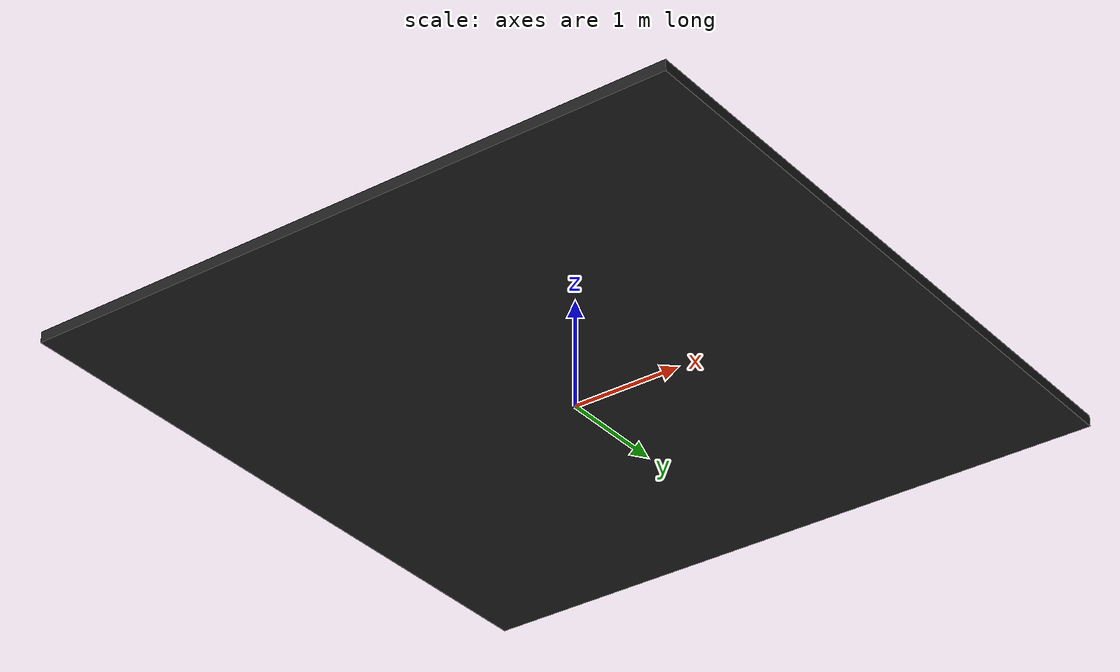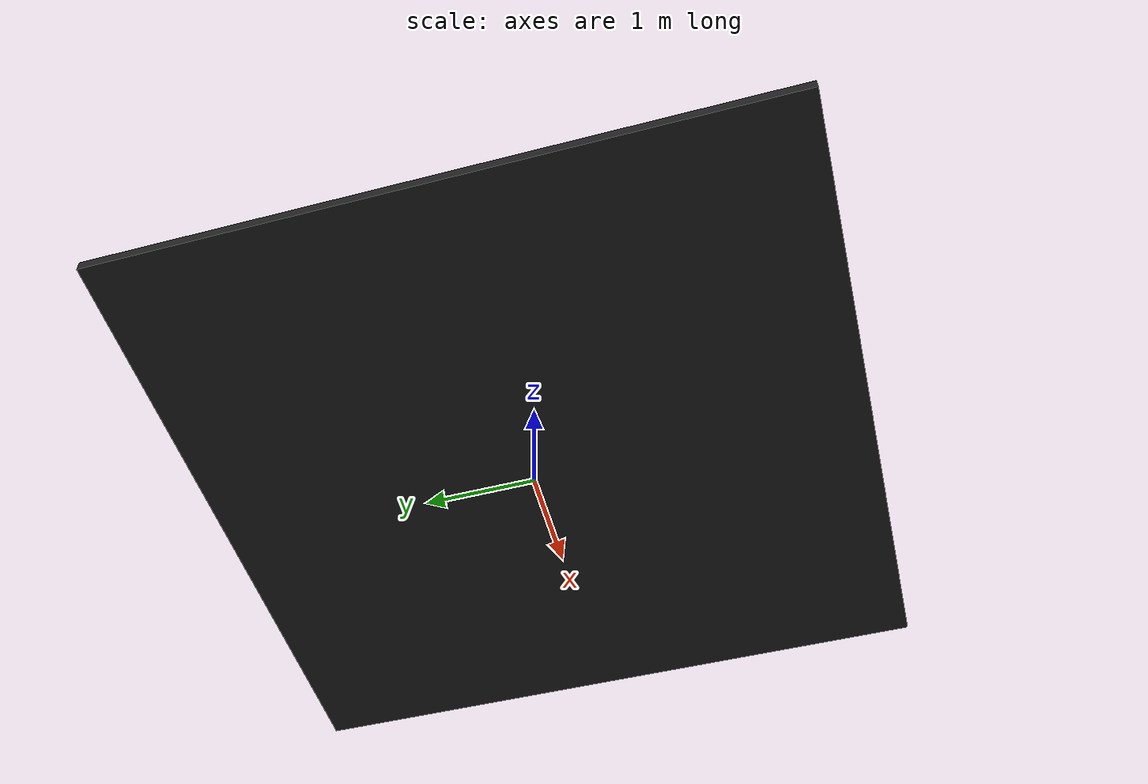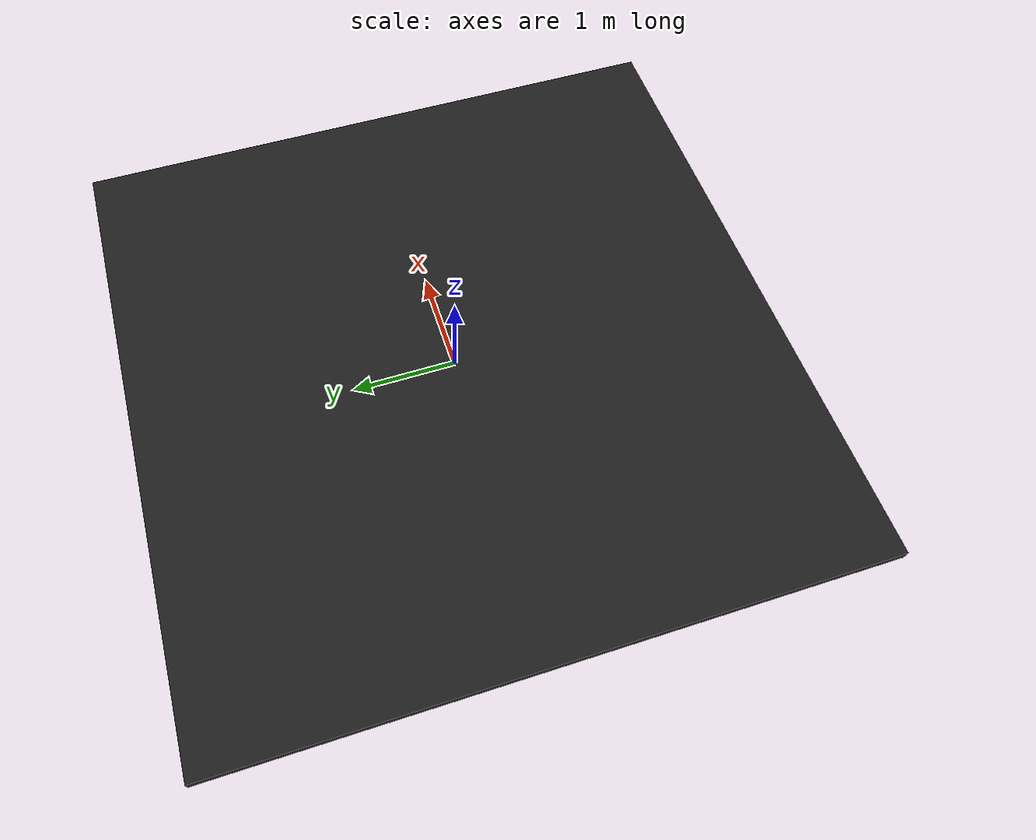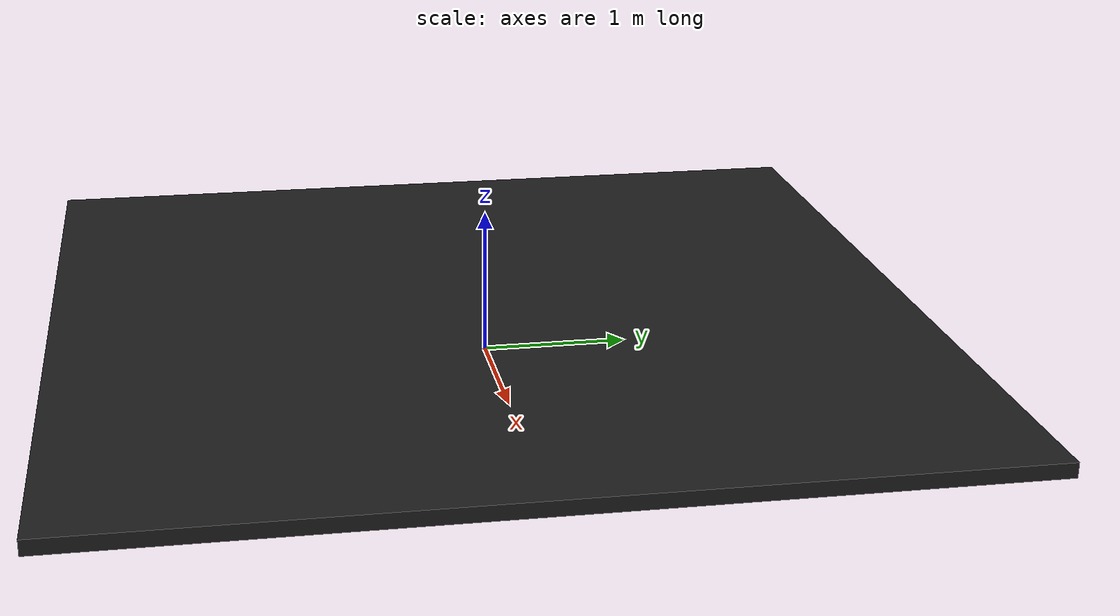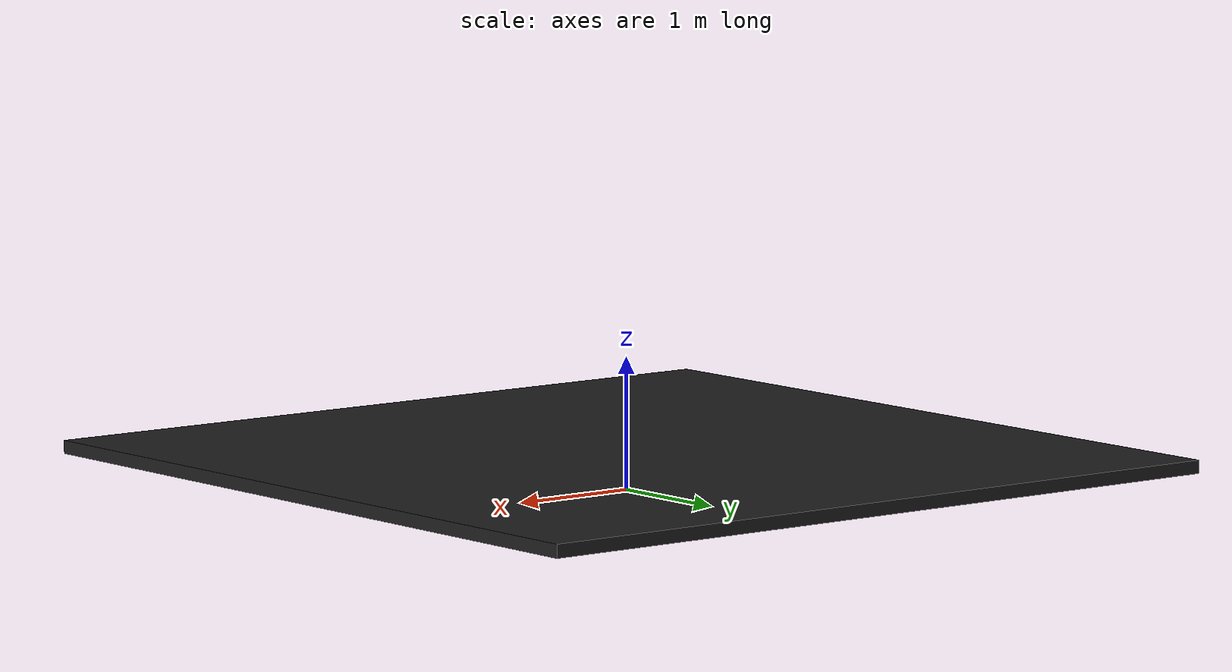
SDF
<?xml version="1.0"?>
<sdf version="1.5">
  <model name="kamikaze_qr_target">
    <static>true</static>
    <pose>0 0 0 0 0 0</pose>

    <link name="target_link">
      <self_collide>false</self_collide>
      <kinematic>false</kinematic>
      <gravity>false</gravity>

      <collision name="qr_base_collision">
        <!-- Alt yüzey 0.20m, üst yüzey 0.30m olacak şekilde merkez z=0.25 -->
        <pose>0 0 0.25 0 0 0</pose>
        <geometry>
          <box>
            <size>6.0 6.0 0.10</size>
          </box>
        </geometry>
      </collision>

      <visual name="qr_base_visual">
        <!-- 10 cm kalın taban, yerden biraz yukarıda -->
        <pose>0 0 0.25 0 0 0</pose>
        <geometry>
          <box>
            <size>6.0 6.0 0.10</size>
          </box>
        </geometry>
        <material>
          <ambient>0.12 0.12 0.12 1</ambient>
          <diffuse>0.12 0.12 0.12 1</diffuse>
          <specular>0.02 0.02 0.02 1</specular>
        </material>
      </visual>

      <visual name="qr_top_visual">
        <!-- QR yüzeyi kalın tabanın üstüne kondu -->
        <pose>0 0 0.301 0 0 0</pose>
        <geometry>
          <plane>
            <normal>0 0 1</normal>
            <size>6.0 6.0</size>
          </plane>
        </geometry>
        <material>
          <script>
            <uri>model://kamikaze_qr_target/materials/scripts</uri>
            <uri>model://kamikaze_qr_target/materials/textures</uri>
            <name>KamikazeQR/Top</name>
          </script>
        </material>
        <cast_shadows>false</cast_shadows>
      </visual>
    </link>
  </model>
</sdf>
